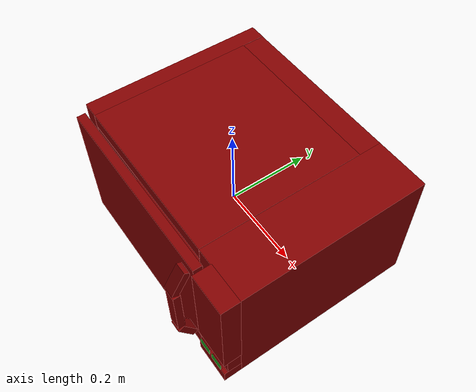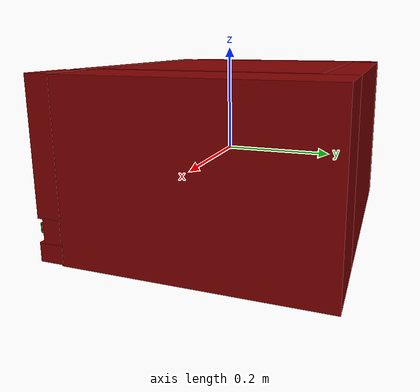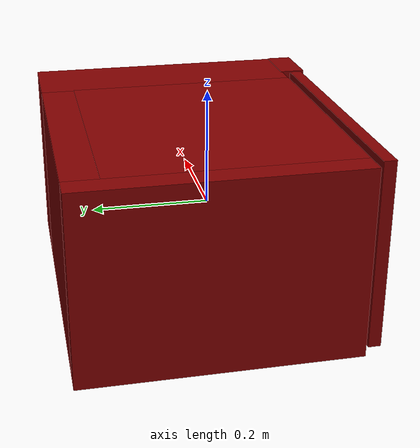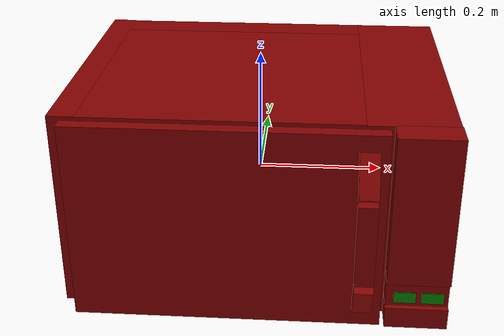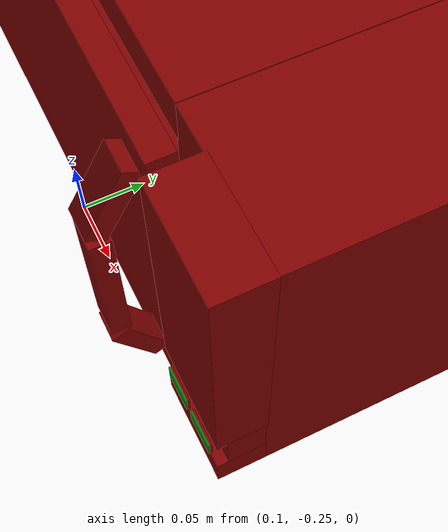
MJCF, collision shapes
<mujoco model="model">
  <compiler angle="radian"/>
  <asset>
    <mesh file="visuals/door.obj" name="door_vis"/>
    <mesh file="visuals/door_Clear.obj" name="door_Clear_vis"/>
    <mesh file="visuals/Body001.obj" name="Body001_vis"/>
    <mesh file="visuals/Button001.obj" name="Button001_vis"/>
    <mesh file="visuals/Button002.obj" name="Button002_vis"/>
    <mesh file="visuals/Disc001.obj" name="Disc001_vis"/>
    <texture file="visuals/T_BC001.png" name="Body001_material" type="2d"/>
    <material name="Body001_material" rgba="1 1 1 1.0" texture="Body001_material" shininess="0.4472135901451111" specular="0.3103448502657381"/>
    <texture file="visuals/T_BC001.png" name="door_material" type="2d"/>
    <material name="door_material" rgba="1 1 1 1.0" texture="door_material" shininess="0.4472135901451111" specular="0.3103448502657381"/>
    <material name="door_Clear_material" rgba="0.016620054841041565 0.016620054841041565 0.016620054841041565 0.8999999761581421" shininess="0.5" specular="0.3103448502657381"/>
    <texture file="visuals/T_BC001.png" name="Button001_material" type="2d"/>
    <material name="Button001_material" rgba="1 1 1 1.0" texture="Button001_material" shininess="0.4472135901451111" specular="0.3103448502657381"/>
    <texture file="visuals/T_BC001.png" name="Button002_material" type="2d"/>
    <material name="Button002_material" rgba="1 1 1 1.0" texture="Button002_material" shininess="0.4472135901451111" specular="0.3103448502657381"/>
    <texture file="visuals/T_BC001.png" name="Disc001_material" type="2d"/>
    <material name="Disc001_material" rgba="1 1 1 1.0" texture="Disc001_material" shininess="0.4472135901451111" specular="0.3103448502657381"/>
  </asset>
  <default>
    <default class="visual">
      <geom conaffinity="0" contype="0" group="1" type="mesh"/>
    </default>
    <default class="collision">
      <geom group="0" rgba="0.5 0 0 0.5"/>
    </default>
    <default class="spawn">
      <geom group="0" rgba="1 1 1 0.5" contype="0" conaffinity="0"/>
      <site group="0" rgba="1 1 1 0.5"/>
    </default>
    <default class="region">
      <geom group="1" conaffinity="0" contype="0" rgba="0 1 0 0"/>
    </default>
  </default>
  <worldbody>
    <body>
      <body name="object">
        <geom class="collision" type="box" pos="0.273859 -0.235922 -0.096104" size="0.01667129620909691 0.0007347743958234787 0.008811401203274727" quat="1.0 0.0 0.0 0.0" name="start_button" rgba="0.0 0.5 0 0.5"/>
        <geom class="collision" type="box" pos="0.231970 -0.235922 -0.096104" size="0.01667129620909691 0.0007347745704464614 0.008811403065919876" quat="1.0 0.0 0.0 0.0" name="stop_button" rgba="0.0 0.5 0 0.5"/>
        <geom class="collision" type="box" pos="-0.045357 0.021795 -0.102034" size="0.14345215260982513 0.14345215260982513 0.0030640135519206524" quat="1.0 0.0 0.0 0.0" name="tray" rgba="0 1 0 0.5"/>
        <geom mesh="Body001_vis" type="mesh" solimp="0.998 0.998 0.001" solref="0.001 1" density="100" friction="0.95 0.3 0.1" class="visual" material="Body001_material"/>
        <geom class="collision" type="box" pos="-0.278815 0.038350 0.004805" size="0.020653150975704193 0.22961854934692383 0.16011029481887817" quat="1.0 0.0 0.0 0.0"/>
        <geom class="collision" type="box" pos="0.230464 0.038350 0.004323" size="0.06828905642032623 0.22961854934692383 0.15962792932987213" quat="1.0 0.0 0.0 0.0"/>
        <geom class="collision" type="box" pos="-0.048158 0.237030 0.004323" size="0.2123100906610489 0.03093857690691948 0.15962855517864227" quat="1.0 0.0 0.0 0.0"/>
        <geom class="collision" type="box" pos="-0.048158 0.009699 0.146404" size="0.21231238543987274 0.20111630856990814 0.01851108856499195" quat="1.0 0.0 0.0 0.0"/>
        <geom class="collision" type="box" pos="-0.048158 0.009699 -0.135173" size="0.21231228113174438 0.2011161744594574 0.019927361980080605" quat="1.0 0.0 0.0 0.0"/>
        <geom class="collision" type="box" pos="0.251853 -0.211228 0.044607" size="0.04755564033985138 0.02214689739048481 0.12030813843011856" quat="1.0 0.0 0.0 0.0"/>
        <geom class="collision" type="box" pos="0.251883 -0.211228 -0.135447" size="0.04758564382791519 0.02214675210416317 0.01728826016187668" quat="1.0 0.0 0.0 0.0"/>
        <geom class="collision" type="box" pos="0.251883 -0.207284 -0.096827" size="0.04758564382791519 0.01679069735109806 0.022569594904780388" quat="1.0 0.0 0.0 0.0"/>
        <geom class="collision" type="cylinder" pos="-0.205763 -0.151554 -0.159212" size="0.011163556016981602 0.005703367758542299" quat="1.0 0.0 0.0 0.0"/>
        <geom class="collision" type="cylinder" pos="-0.205763 0.203182 -0.159212" size="0.011163556016981602 0.005703367758542299" quat="1.0 0.0 0.0 0.0"/>
        <geom class="collision" type="cylinder" pos="0.180346 -0.151554 -0.159212" size="0.011163556016981602 0.005703367758542299" quat="1.0 0.0 0.0 0.0"/>
        <geom class="collision" type="cylinder" pos="0.180346 0.203182 -0.159212" size="0.011163556016981602 0.005703367758542299" quat="1.0 0.0 0.0 0.0"/>
        <body name="door">
          <joint axis="0.0 0.0 1.0" pos="-0.279714 -0.208152 0.005941" limited="true" name="microjoint" range="-1.5707963267948966 0.0" type="hinge" damping="1" frictionloss="1" armature=".01" stiffness="0.05"/>
          <geom mesh="door_vis" type="mesh" solimp="0.998 0.998 0.001" solref="0.001 1" density="100" friction="0.95 0.3 0.1" class="visual" material="door_material"/>
          <geom class="collision" type="box" pos="-0.039138 -0.215553 0.004805" size="0.23685599863529205 0.010577213950455189 0.16011029481887817" quat="1.0 0.0 0.0 0.0"/>
          <geom class="collision" type="box" pos="0.168122 -0.245909 0.110712" size="0.008749110624194145 0.014426779933273792 0.033219289034605026" quat="0.6828148365020752 -0.183749720454216 0.1837497055530548 0.6828147768974304"/>
          <geom class="collision" type="box" pos="0.168122 -0.245489 -0.093457" size="0.00874911155551672 0.014426779933273792 0.033219289034605026" quat="0.6828147768974304 0.1837497353553772 0.18374976515769958 -0.6828147768974304"/>
          <geom class="collision" type="box" pos="0.168122 -0.260307 0.008633" size="0.014426780864596367 0.00874911155551672 0.06571493297815323" quat="1.0 0.0 0.0 0.0" name="door_handle"/>
          <body name="door_Clear">
            <geom mesh="door_Clear_vis" type="mesh" solimp="0.998 0.998 0.001" solref="0.001 1" density="100" friction="0.95 0.3 0.1" class="visual" material="door_Clear_material"/>
            <geom class="collision" type="box" pos="-0.047205 -0.218242 0.006805" size="0.1515043079853058 0.0031866692006587982 0.09783978760242462" quat="1.0 0.0 0.0 0.0"/>
          </body>
        </body>
        <body name="Button001">
          <joint axis="0.0 1.0 0.0" pos="0.273859 -0.234374 -0.105489" limited="true" name="Button001_joint" range="0.0 0.004" type="slide" damping="1" frictionloss="1" armature=".01" stiffness="0.05"/>
          <geom mesh="Button001_vis" type="mesh" solimp="0.998 0.998 0.001" solref="0.001 1" density="100" friction="0.95 0.3 0.1" class="visual" material="Button001_material"/>
          <geom class="collision" type="box" pos="0.273859 -0.233854 -0.096104" size="0.01667129620909691 0.0007347739301621914 0.00881139561533928" quat="1.0 0.0 0.0 0.0"/>
        </body>
        <body name="Button002">
          <joint axis="0.0 1.0 0.0" pos="0.231970 -0.234374 -0.105489" limited="true" name="Button002_joint" range="0.0 0.004" type="slide" damping="1" frictionloss="1" armature=".01" stiffness="0.05"/>
          <geom mesh="Button002_vis" type="mesh" solimp="0.998 0.998 0.001" solref="0.001 1" density="100" friction="0.95 0.3 0.1" class="visual" material="Button002_material"/>
          <geom class="collision" type="box" pos="0.231970 -0.233854 -0.096104" size="0.01667129620909691 0.000734774162992835 0.008811398409307003" quat="1.0 0.0 0.0 0.0"/>
        </body>
        <body name="Disc001">
          <joint axis="0.0 0.0 -1.0" pos="-0.045357 0.021795 -0.096108" limited="false" name="Disc001_joint" range="0 360" type="hinge" damping="1" frictionloss="1" armature=".01" stiffness="0.05"/>
          <geom mesh="Disc001_vis" type="mesh" solimp="0.998 0.998 0.001" solref="0.001 1" density="100" friction="0.95 0.3 0.1" class="visual" material="Disc001_material"/>
          <geom class="collision" type="cylinder" pos="-0.045357 0.021795 -0.109624" size="0.14345219731330872 0.0027791813481599092" quat="1.0 0.0 0.0 0.0"/>
        </body>
        <geom class="region" name="reg_main" type="box" pos="0.0 0.018113500000000005 0.0" size="0.299468 0.2509425 0.164915"/>
        <geom class="region" name="reg_int" type="box" pos="-0.047695000000000015 0.012797500000000003 0.006241500000000004" size="0.209215 0.1949165 0.1228185"/>
      </body>
    </body>
  </worldbody>
  <actuator>
    <motor name="microjoint_actuator" joint="microjoint" gear="10"/>
    <motor name="Button001_joint_actuator" joint="Button001_joint" gear="0.5"/>
    <motor name="Button002_joint_actuator" joint="Button002_joint" gear="0.5"/>
    <motor name="Disc001_joint_actuator" joint="Disc001_joint" gear="50"/>
  </actuator>
</mujoco>
